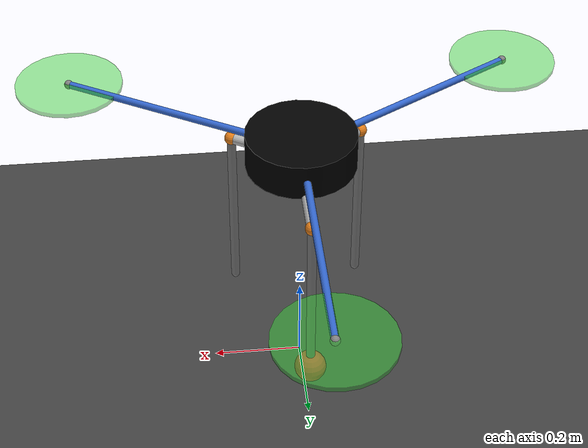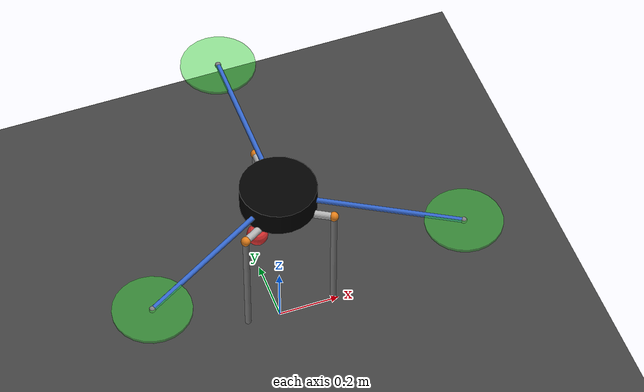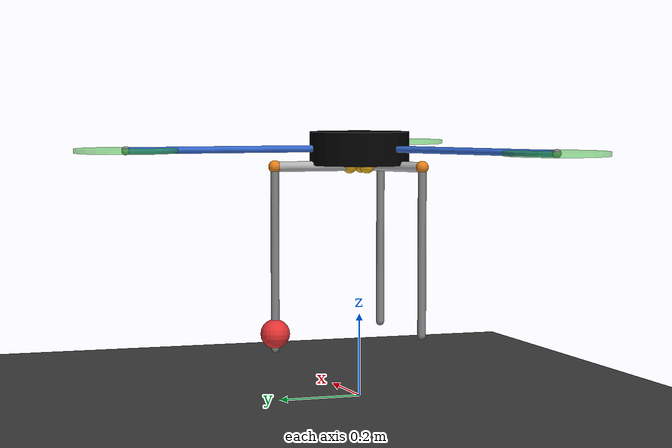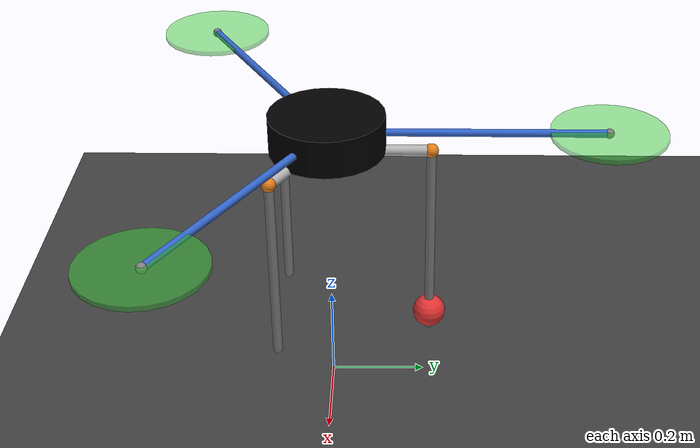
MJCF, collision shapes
<mujoco model="hopper_3rsr_visual">
  <compiler angle="degree" meshdir="meshes" eulerseq="xyz"/>

  <option timestep="0.001" gravity="0 0 -9.81" integrator="RK4">
    <flag warmstart="enable"/>
  </option>

  <visual>
    <global offwidth="1920" offheight="1080"/>
    <quality shadowsize="4096"/>
  </visual>

  <default>
    <joint armature="0.005" damping="0.5" limited="true"/>
    <geom contype="1" conaffinity="1" friction="0.8 0.005 0.0001"/>
    <motor ctrllimited="true"/>
  </default>

  <asset>
    <texture type="skybox" builtin="gradient" rgb1="0.4 0.6 0.8" rgb2="0 0 0" width="512" height="512"/>
    <texture name="plane_tex" type="2d" builtin="checker" rgb1="0.2 0.2 0.2" rgb2="0.3 0.3 0.3" width="512" height="512"/>
    <material name="plane_mat" texture="plane_tex" texrepeat="5 5" reflectance="0.1"/>

    <!-- Materials for 3RSR visualization -->
    <material name="base_mat" rgba="0.2 0.4 0.8 1"/>
    <material name="motor_mat" rgba="0.9 0.7 0.1 1"/>
    <material name="upper_mat" rgba="0.7 0.7 0.7 1"/>
    <material name="knee_mat" rgba="0.9 0.5 0.1 1"/>
    <material name="lower_mat" rgba="0.5 0.5 0.5 1"/>
    <material name="foot_mat" rgba="0.9 0.2 0.2 1"/>
    <material name="prop_mat" rgba="0.2 0.8 0.2 0.5"/>

    <mesh name="base_link_mesh" file="base_link.STL"/>
  </asset>

  <worldbody>
    <!-- Ground -->
    <geom name="ground" type="plane" size="10 10 0.1" material="plane_mat"/>

    <!-- ========== BASE (Floating) ========== -->
    <body name="base_link" pos="0 0 0.6">
      <freejoint name="root"/>

      <site name="imu_site" pos="0 0 0" size="0.01"/>

      <inertial pos="0 0 -0.02" mass="2.507"
                diaginertia="0.0234 0.0234 0.046"/>

      <!-- Base visual -->
      <geom name="base_visual" type="mesh" mesh="base_link_mesh"
            material="base_mat" contype="0" conaffinity="0"/>
      <geom name="base_collision" type="cylinder" size="0.12 0.04"
            pos="0 0 0" rgba="0 0 0 0"/>

      <!-- Propeller arms -->
      <geom name="prop_arm_1" type="capsule" fromto="0 0 0 0 0.57 0"
            size="0.008" material="base_mat" contype="0" conaffinity="0"/>
      <geom name="prop_arm_2" type="capsule" fromto="0 0 0 0.493 -0.285 0"
            size="0.008" material="base_mat" contype="0" conaffinity="0"/>
      <geom name="prop_arm_3" type="capsule" fromto="0 0 0 -0.493 -0.285 0"
            size="0.008" material="base_mat" contype="0" conaffinity="0"/>

      <!-- Propeller discs -->
      <geom name="prop_1" type="cylinder" size="0.12 0.005" pos="0 0.57 0"
            material="prop_mat" contype="0" conaffinity="0"/>
      <geom name="prop_2" type="cylinder" size="0.12 0.005" pos="0.493 -0.285 0"
            material="prop_mat" contype="0" conaffinity="0"/>
      <geom name="prop_3" type="cylinder" size="0.12 0.005" pos="-0.493 -0.285 0"
            material="prop_mat" contype="0" conaffinity="0"/>

      <site name="prop_site_1" pos="0 0.57 0" size="0.01"/>
      <site name="prop_site_2" pos="0.493 -0.285 0" size="0.01"/>
      <site name="prop_site_3" pos="-0.493 -0.285 0" size="0.01"/>

      <!-- ========== LIMB 1 (φ = 0°, Y+ direction) ========== -->
      <!-- Motor at (0, r, -offset) -->
      <body name="motor1_body" pos="0 0.02424 -0.0416">
        <joint name="motor1" type="hinge" axis="1 0 0"
               range="-60 60" ref="-12.68" damping="0.5"/>
        <inertial pos="0 0 0" mass="0.03" diaginertia="1e-5 1e-5 1e-5"/>
        <geom name="motor1_geom" type="sphere" size="0.018" material="motor_mat"/>

        <!-- Upper link 1: extends along local Y then bends -->
        <body name="upper1_body" pos="0 0.094 0">
          <inertial pos="0 0.047 0" mass="0.06" diaginertia="3e-4 1e-5 3e-4"/>
          <geom name="upper1_geom" type="capsule" fromto="0 -0.094 0 0 0.094 0"
                size="0.012" material="upper_mat"/>

          <!-- Knee 1 (spherical: 3 hinges) -->
          <body name="knee1_body" pos="0 0.094 0">
            <joint name="knee1_x" type="hinge" axis="1 0 0" range="-80 80" damping="0.1"/>
            <joint name="knee1_y" type="hinge" axis="0 1 0" range="-80 80" damping="0.1"/>
            <joint name="knee1_z" type="hinge" axis="0 0 1" range="-80 80" damping="0.1"/>
            <inertial pos="0 0 0" mass="0.02" diaginertia="1e-5 1e-5 1e-5"/>
            <geom name="knee1_geom" type="sphere" size="0.015" material="knee_mat"/>

            <!-- Lower link 1 + Foot (primary chain) -->
            <body name="lower1_body" pos="0 0 0">
              <inertial pos="0 0 -0.199" mass="0.12" diaginertia="6e-4 6e-4 1e-5"/>
              <geom name="lower1_geom" type="capsule" fromto="0 0 0 0 0 -0.398"
                    size="0.010" material="lower_mat"/>

              <!-- FOOT attached to limb 1 -->
              <body name="foot_link" pos="0 0 -0.398">
                <inertial pos="0 0 0" mass="0.01" diaginertia="1e-6 1e-6 1e-6"/>
                <geom name="foot_geom" type="sphere" size="0.035" material="foot_mat"/>
                <site name="foot_site" pos="0 0 -0.035" size="0.01"/>
                <site name="foot_center" pos="0 0 0" size="0.005"/>
              </body>
            </body>
          </body>
        </body>
      </body>

      <!-- ========== LIMB 2 (φ = 120°) ========== -->
      <body name="motor2_body" pos="0.02099 -0.01212 -0.0416" euler="0 0 120">
        <joint name="motor2" type="hinge" axis="1 0 0"
               range="-60 60" ref="-12.68" damping="0.5"/>
        <inertial pos="0 0 0" mass="0.03" diaginertia="1e-5 1e-5 1e-5"/>
        <geom name="motor2_geom" type="sphere" size="0.018" material="motor_mat"/>

        <body name="upper2_body" pos="0 0.094 0">
          <inertial pos="0 0.047 0" mass="0.06" diaginertia="3e-4 1e-5 3e-4"/>
          <geom name="upper2_geom" type="capsule" fromto="0 -0.094 0 0 0.094 0"
                size="0.012" material="upper_mat"/>

          <body name="knee2_body" pos="0 0.094 0">
            <joint name="knee2_x" type="hinge" axis="1 0 0" range="-80 80" damping="0.1"/>
            <joint name="knee2_y" type="hinge" axis="0 1 0" range="-80 80" damping="0.1"/>
            <joint name="knee2_z" type="hinge" axis="0 0 1" range="-80 80" damping="0.1"/>
            <inertial pos="0 0 0" mass="0.02" diaginertia="1e-5 1e-5 1e-5"/>
            <geom name="knee2_geom" type="sphere" size="0.015" material="knee_mat"/>

            <body name="lower2_body" pos="0 0 0">
              <inertial pos="0 0 -0.199" mass="0.12" diaginertia="6e-4 6e-4 1e-5"/>
              <geom name="lower2_geom" type="capsule" fromto="0 0 0 0 0 -0.398"
                    size="0.010" material="lower_mat"/>
              <site name="lower2_tip" pos="0 0 -0.398" size="0.005"/>
            </body>
          </body>
        </body>
      </body>

      <!-- ========== LIMB 3 (φ = 240°) ========== -->
      <body name="motor3_body" pos="-0.02099 -0.01212 -0.0416" euler="0 0 240">
        <joint name="motor3" type="hinge" axis="1 0 0"
               range="-60 60" ref="-12.68" damping="0.5"/>
        <inertial pos="0 0 0" mass="0.03" diaginertia="1e-5 1e-5 1e-5"/>
        <geom name="motor3_geom" type="sphere" size="0.018" material="motor_mat"/>

        <body name="upper3_body" pos="0 0.094 0">
          <inertial pos="0 0.047 0" mass="0.06" diaginertia="3e-4 1e-5 3e-4"/>
          <geom name="upper3_geom" type="capsule" fromto="0 -0.094 0 0 0.094 0"
                size="0.012" material="upper_mat"/>

          <body name="knee3_body" pos="0 0.094 0">
            <joint name="knee3_x" type="hinge" axis="1 0 0" range="-80 80" damping="0.1"/>
            <joint name="knee3_y" type="hinge" axis="0 1 0" range="-80 80" damping="0.1"/>
            <joint name="knee3_z" type="hinge" axis="0 0 1" range="-80 80" damping="0.1"/>
            <inertial pos="0 0 0" mass="0.02" diaginertia="1e-5 1e-5 1e-5"/>
            <geom name="knee3_geom" type="sphere" size="0.015" material="knee_mat"/>

            <body name="lower3_body" pos="0 0 0">
              <inertial pos="0 0 -0.199" mass="0.12" diaginertia="6e-4 6e-4 1e-5"/>
              <geom name="lower3_geom" type="capsule" fromto="0 0 0 0 0 -0.398"
                    size="0.010" material="lower_mat"/>
              <site name="lower3_tip" pos="0 0 -0.398" size="0.005"/>
            </body>
          </body>
        </body>
      </body>

    </body>
  </worldbody>

  <!-- ========== CLOSED-LOOP CONSTRAINTS ========== -->
  <!-- Connect limbs 2 and 3 to the foot (limb 1 has foot attached) -->
  <equality>
    <connect name="loop2" body1="lower2_body" body2="foot_link"
             anchor="0 0 -0.398" solref="0.002 1" solimp="0.95 0.99 0.001"/>
    <connect name="loop3" body1="lower3_body" body2="foot_link"
             anchor="0 0 -0.398" solref="0.002 1" solimp="0.95 0.99 0.001"/>
  </equality>

  <!-- ========== ACTUATORS ========== -->
  <actuator>
    <motor name="motor1_act" joint="motor1" gear="1" ctrlrange="-15 15"/>
    <motor name="motor2_act" joint="motor2" gear="1" ctrlrange="-15 15"/>
    <motor name="motor3_act" joint="motor3" gear="1" ctrlrange="-15 15"/>
  </actuator>

  <!-- ========== SENSORS ========== -->
  <sensor>
    <accelerometer name="imu_accel" site="imu_site"/>
    <gyro name="imu_gyro" site="imu_site"/>
    <framequat name="imu_quat" objtype="body" objname="base_link"/>
    <jointpos name="motor1_pos" joint="motor1"/>
    <jointpos name="motor2_pos" joint="motor2"/>
    <jointpos name="motor3_pos" joint="motor3"/>
    <touch name="foot_touch" site="foot_site"/>
  </sensor>

  <!-- ========== KEYFRAME ========== -->
  <keyframe>
    <key name="home" qpos="0 0 0.6 1 0 0 0  0 0 0 0  0 0 0 0  0 0 0 0"/>
  </keyframe>

</mujoco>
